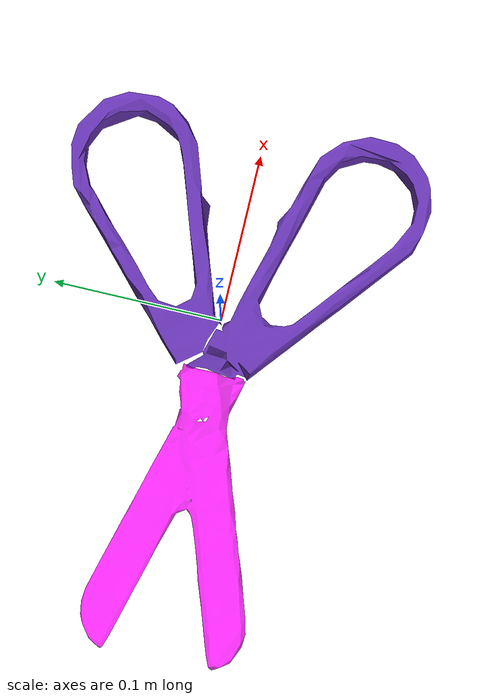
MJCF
<?xml version="1.0" encoding="utf-8"?>
<mujoco model="top_watertight_tiny">

  <asset>

    <mesh file="top_watertight_tiny.obj"/>

    <mesh file="top_watertight_tiny_collision_0.obj"/>

    <mesh file="top_watertight_tiny_collision_1.obj"/>

    <mesh file="top_watertight_tiny_collision_2.obj"/>

    <mesh file="top_watertight_tiny_collision_3.obj"/>

    <mesh file="top_watertight_tiny_collision_4.obj"/>

    <mesh file="top_watertight_tiny_collision_5.obj"/>

    <mesh file="top_watertight_tiny_collision_6.obj"/>

    <mesh file="top_watertight_tiny_collision_7.obj"/>

    <mesh file="top_watertight_tiny_collision_8.obj"/>

    <mesh file="top_watertight_tiny_collision_9.obj"/>

    <mesh file="top_watertight_tiny_collision_10.obj"/>

    <mesh file="top_watertight_tiny_collision_11.obj"/>

    <mesh file="top_watertight_tiny_collision_12.obj"/>

    <mesh file="top_watertight_tiny_collision_13.obj"/>

    <mesh file="top_watertight_tiny_collision_14.obj"/>

    <mesh file="top_watertight_tiny_collision_15.obj"/>

    <mesh file="top_watertight_tiny_collision_16.obj"/>

    <mesh file="top_watertight_tiny_collision_17.obj"/>

    <mesh file="top_watertight_tiny_collision_18.obj"/>

    <mesh file="top_watertight_tiny_collision_19.obj"/>

    <mesh file="top_watertight_tiny_collision_20.obj"/>

    <mesh file="top_watertight_tiny_collision_21.obj"/>

    <mesh file="top_watertight_tiny_collision_22.obj"/>

    <mesh file="top_watertight_tiny_collision_23.obj"/>

    <mesh file="top_watertight_tiny_collision_24.obj"/>

    <mesh file="top_watertight_tiny_collision_25.obj"/>

    <mesh file="top_watertight_tiny_collision_26.obj"/>

    <mesh file="top_watertight_tiny_collision_27.obj"/>

    <mesh file="top_watertight_tiny_collision_28.obj"/>

    <mesh file="top_watertight_tiny_collision_29.obj"/>

    <mesh file="top_watertight_tiny_collision_30.obj"/>

    <mesh file="top_watertight_tiny_collision_31.obj"/>

    <mesh file="top_watertight_tiny_collision_32.obj"/>

    <mesh file="top_watertight_tiny_collision_33.obj"/>

    <mesh file="top_watertight_tiny_collision_34.obj"/>

    <mesh file="bottom_watertight_tiny.obj"/>

    <mesh file="bottom_watertight_tiny_collision_0.obj"/>

    <mesh file="bottom_watertight_tiny_collision_1.obj"/>

    <mesh file="bottom_watertight_tiny_collision_2.obj"/>

    <mesh file="bottom_watertight_tiny_collision_3.obj"/>

    <mesh file="bottom_watertight_tiny_collision_4.obj"/>

    <mesh file="bottom_watertight_tiny_collision_5.obj"/>

    <mesh file="bottom_watertight_tiny_collision_6.obj"/>

    <mesh file="bottom_watertight_tiny_collision_7.obj"/>

    <mesh file="bottom_watertight_tiny_collision_8.obj"/>

    <mesh file="bottom_watertight_tiny_collision_9.obj"/>

    <mesh file="bottom_watertight_tiny_collision_10.obj"/>

    <mesh file="bottom_watertight_tiny_collision_11.obj"/>

    <mesh file="bottom_watertight_tiny_collision_12.obj"/>

    <mesh file="bottom_watertight_tiny_collision_13.obj"/>

    <mesh file="bottom_watertight_tiny_collision_14.obj"/>

  </asset>

  <worldbody>

    <body name="top_watertight_tiny">

      <freejoint/>

      <geom mesh="top_watertight_tiny" group="2" type="mesh" rgba="0.4 0.2 0.7 1" contype="0" conaffinity="0" solimp="0.90 0.95 0.001" solref="0.02 1.0" density="100" friction="0.95 0.4 0.3"/>

      <geom mesh="top_watertight_tiny_collision_0" rgba="0.4626614823373031 0.1838827324704353 0.3422918710329522 1" group="3" type="mesh" solimp="0.90 0.95 0.001" solref="0.02 1.0" density="100" friction="0.95 0.4 0.3"/>

      <geom mesh="top_watertight_tiny_collision_1" rgba="0.5445767869313037 0.6353428325800452 0.9513442831535136 1" group="3" type="mesh" solimp="0.90 0.95 0.001" solref="0.02 1.0" density="100" friction="0.95 0.4 0.3"/>

      <geom mesh="top_watertight_tiny_collision_2" rgba="0.6336134422852723 0.6255807963234515 0.6682565030784698 1" group="3" type="mesh" solimp="0.90 0.95 0.001" solref="0.02 1.0" density="100" friction="0.95 0.4 0.3"/>

      <geom mesh="top_watertight_tiny_collision_3" rgba="0.8666026543069485 0.4162442920525299 0.680003788764021 1" group="3" type="mesh" solimp="0.90 0.95 0.001" solref="0.02 1.0" density="100" friction="0.95 0.4 0.3"/>

      <geom mesh="top_watertight_tiny_collision_4" rgba="0.32906469533046756 0.0600455643497394 0.1363656576386172 1" group="3" type="mesh" solimp="0.90 0.95 0.001" solref="0.02 1.0" density="100" friction="0.95 0.4 0.3"/>

      <geom mesh="top_watertight_tiny_collision_5" rgba="0.3985313316887502 0.6567212318487765 0.01568228580671205 1" group="3" type="mesh" solimp="0.90 0.95 0.001" solref="0.02 1.0" density="100" friction="0.95 0.4 0.3"/>

      <geom mesh="top_watertight_tiny_collision_6" rgba="0.9726426098871301 0.14845858309718185 0.1244204411026597 1" group="3" type="mesh" solimp="0.90 0.95 0.001" solref="0.02 1.0" density="100" friction="0.95 0.4 0.3"/>

      <geom mesh="top_watertight_tiny_collision_7" rgba="0.6166946742347542 0.8127442586446252 0.6136302520286487 1" group="3" type="mesh" solimp="0.90 0.95 0.001" solref="0.02 1.0" density="100" friction="0.95 0.4 0.3"/>

      <geom mesh="top_watertight_tiny_collision_8" rgba="0.897796863519104 0.20624877186199198 0.053327943024294666 1" group="3" type="mesh" solimp="0.90 0.95 0.001" solref="0.02 1.0" density="100" friction="0.95 0.4 0.3"/>

      <geom mesh="top_watertight_tiny_collision_9" rgba="0.14520633074354317 0.31813141339146844 0.43464573818850316 1" group="3" type="mesh" solimp="0.90 0.95 0.001" solref="0.02 1.0" density="100" friction="0.95 0.4 0.3"/>

      <geom mesh="top_watertight_tiny_collision_10" rgba="0.28618801409937744 0.03231878023093737 0.5545849966216458 1" group="3" type="mesh" solimp="0.90 0.95 0.001" solref="0.02 1.0" density="100" friction="0.95 0.4 0.3"/>

      <geom mesh="top_watertight_tiny_collision_11" rgba="0.33667143897251905 0.19132592612504018 0.5420719966404363 1" group="3" type="mesh" solimp="0.90 0.95 0.001" solref="0.02 1.0" density="100" friction="0.95 0.4 0.3"/>

      <geom mesh="top_watertight_tiny_collision_12" rgba="0.6317309956890945 0.8794461866243029 0.6633222001959029 1" group="3" type="mesh" solimp="0.90 0.95 0.001" solref="0.02 1.0" density="100" friction="0.95 0.4 0.3"/>

      <geom mesh="top_watertight_tiny_collision_13" rgba="0.8852617952192834 0.1665021778246567 0.052483864682979386 1" group="3" type="mesh" solimp="0.90 0.95 0.001" solref="0.02 1.0" density="100" friction="0.95 0.4 0.3"/>

      <geom mesh="top_watertight_tiny_collision_14" rgba="0.9336684206637588 0.06660640191980272 0.5983973207848111 1" group="3" type="mesh" solimp="0.90 0.95 0.001" solref="0.02 1.0" density="100" friction="0.95 0.4 0.3"/>

      <geom mesh="top_watertight_tiny_collision_15" rgba="0.07739295950708724 0.3127878860044081 0.417180914166438 1" group="3" type="mesh" solimp="0.90 0.95 0.001" solref="0.02 1.0" density="100" friction="0.95 0.4 0.3"/>

      <geom mesh="top_watertight_tiny_collision_16" rgba="0.4497838643167441 0.5716504149774757 0.027655358773777672 1" group="3" type="mesh" solimp="0.90 0.95 0.001" solref="0.02 1.0" density="100" friction="0.95 0.4 0.3"/>

      <geom mesh="top_watertight_tiny_collision_17" rgba="0.08265158974860343 0.3754078849383119 0.23140959348509071 1" group="3" type="mesh" solimp="0.90 0.95 0.001" solref="0.02 1.0" density="100" friction="0.95 0.4 0.3"/>

      <geom mesh="top_watertight_tiny_collision_18" rgba="0.5110635373474605 0.023542700980439757 0.6798269046395641 1" group="3" type="mesh" solimp="0.90 0.95 0.001" solref="0.02 1.0" density="100" friction="0.95 0.4 0.3"/>

      <geom mesh="top_watertight_tiny_collision_19" rgba="0.242699044149689 0.4519657482481624 0.15087064427343944 1" group="3" type="mesh" solimp="0.90 0.95 0.001" solref="0.02 1.0" density="100" friction="0.95 0.4 0.3"/>

      <geom mesh="top_watertight_tiny_collision_20" rgba="0.14000537994548423 0.0077773560607465875 0.16156128134725267 1" group="3" type="mesh" solimp="0.90 0.95 0.001" solref="0.02 1.0" density="100" friction="0.95 0.4 0.3"/>

      <geom mesh="top_watertight_tiny_collision_21" rgba="0.28742143758663974 0.6462493317720278 0.6105842590507622 1" group="3" type="mesh" solimp="0.90 0.95 0.001" solref="0.02 1.0" density="100" friction="0.95 0.4 0.3"/>

      <geom mesh="top_watertight_tiny_collision_22" rgba="0.20436233576347418 0.5933003269387017 0.9530426634492802 1" group="3" type="mesh" solimp="0.90 0.95 0.001" solref="0.02 1.0" density="100" friction="0.95 0.4 0.3"/>

      <geom mesh="top_watertight_tiny_collision_23" rgba="0.04982906524167263 0.2687611653223865 0.1793404641356069 1" group="3" type="mesh" solimp="0.90 0.95 0.001" solref="0.02 1.0" density="100" friction="0.95 0.4 0.3"/>

      <geom mesh="top_watertight_tiny_collision_24" rgba="0.31981838340089663 0.278560140519742 0.3471224938805122 1" group="3" type="mesh" solimp="0.90 0.95 0.001" solref="0.02 1.0" density="100" friction="0.95 0.4 0.3"/>

      <geom mesh="top_watertight_tiny_collision_25" rgba="0.9893095309858724 0.7059760041327703 0.6828871267577575 1" group="3" type="mesh" solimp="0.90 0.95 0.001" solref="0.02 1.0" density="100" friction="0.95 0.4 0.3"/>

      <geom mesh="top_watertight_tiny_collision_26" rgba="0.6256993170482554 0.9816709489282667 0.2608909608607809 1" group="3" type="mesh" solimp="0.90 0.95 0.001" solref="0.02 1.0" density="100" friction="0.95 0.4 0.3"/>

      <geom mesh="top_watertight_tiny_collision_27" rgba="0.5440962077147867 0.7392832115273674 0.5709038614339648 1" group="3" type="mesh" solimp="0.90 0.95 0.001" solref="0.02 1.0" density="100" friction="0.95 0.4 0.3"/>

      <geom mesh="top_watertight_tiny_collision_28" rgba="0.3554853131499539 0.19645293277441844 0.6721844784846921 1" group="3" type="mesh" solimp="0.90 0.95 0.001" solref="0.02 1.0" density="100" friction="0.95 0.4 0.3"/>

      <geom mesh="top_watertight_tiny_collision_29" rgba="0.6458535810848641 0.2702009490993982 0.43801011727023853 1" group="3" type="mesh" solimp="0.90 0.95 0.001" solref="0.02 1.0" density="100" friction="0.95 0.4 0.3"/>

      <geom mesh="top_watertight_tiny_collision_30" rgba="0.14917060355090117 0.42500265975452534 0.6846671452191576 1" group="3" type="mesh" solimp="0.90 0.95 0.001" solref="0.02 1.0" density="100" friction="0.95 0.4 0.3"/>

      <geom mesh="top_watertight_tiny_collision_31" rgba="0.7735626498047639 0.33585241143505584 0.3471092688452001 1" group="3" type="mesh" solimp="0.90 0.95 0.001" solref="0.02 1.0" density="100" friction="0.95 0.4 0.3"/>

      <geom mesh="top_watertight_tiny_collision_32" rgba="0.05192112931223314 0.6913553836998152 0.6816882756199322 1" group="3" type="mesh" solimp="0.90 0.95 0.001" solref="0.02 1.0" density="100" friction="0.95 0.4 0.3"/>

      <geom mesh="top_watertight_tiny_collision_33" rgba="0.14829705854387876 0.9450658963532927 0.999130170472614 1" group="3" type="mesh" solimp="0.90 0.95 0.001" solref="0.02 1.0" density="100" friction="0.95 0.4 0.3"/>

      <geom mesh="top_watertight_tiny_collision_34" rgba="0.6483472666778693 0.8574056285944275 0.6694123652213013 1" group="3" type="mesh" solimp="0.90 0.95 0.001" solref="0.02 1.0" density="100" friction="0.95 0.4 0.3"/>

      <body name="bottom_watertight_tiny">

        <geom mesh="bottom_watertight_tiny" group="2" type="mesh" rgba="1 0 1 0.8" contype="0" conaffinity="0" solimp="0.90 0.95 0.001" solref="0.02 1.0" density="100" friction="0.95 0.4 0.3"/>

        <geom mesh="bottom_watertight_tiny_collision_0" rgba="0.5272290096863181 0.49594848526288005 0.9428245246786853 1" group="3" type="mesh" solimp="0.90 0.95 0.001" solref="0.02 1.0" density="100" friction="0.95 0.4 0.3"/>

        <geom mesh="bottom_watertight_tiny_collision_1" rgba="0.30865744844416676 0.8914641683494989 0.914047764849407 1" group="3" type="mesh" solimp="0.90 0.95 0.001" solref="0.02 1.0" density="100" friction="0.95 0.4 0.3"/>

        <geom mesh="bottom_watertight_tiny_collision_2" rgba="0.14732138102712922 0.6474224101818601 0.13386764938532236 1" group="3" type="mesh" solimp="0.90 0.95 0.001" solref="0.02 1.0" density="100" friction="0.95 0.4 0.3"/>

        <geom mesh="bottom_watertight_tiny_collision_3" rgba="0.6592470733483282 0.16629687952200067 0.5690621131834793 1" group="3" type="mesh" solimp="0.90 0.95 0.001" solref="0.02 1.0" density="100" friction="0.95 0.4 0.3"/>

        <geom mesh="bottom_watertight_tiny_collision_4" rgba="0.14480078446289557 0.8995111724770833 0.9431585223219869 1" group="3" type="mesh" solimp="0.90 0.95 0.001" solref="0.02 1.0" density="100" friction="0.95 0.4 0.3"/>

        <geom mesh="bottom_watertight_tiny_collision_5" rgba="0.5878952822229575 0.3557181963138979 0.1259542522784528 1" group="3" type="mesh" solimp="0.90 0.95 0.001" solref="0.02 1.0" density="100" friction="0.95 0.4 0.3"/>

        <geom mesh="bottom_watertight_tiny_collision_6" rgba="0.8498374278851542 0.2661548872660595 0.7546920221979878 1" group="3" type="mesh" solimp="0.90 0.95 0.001" solref="0.02 1.0" density="100" friction="0.95 0.4 0.3"/>

        <geom mesh="bottom_watertight_tiny_collision_7" rgba="0.8979028825431346 0.17918422115483412 0.5641609217662489 1" group="3" type="mesh" solimp="0.90 0.95 0.001" solref="0.02 1.0" density="100" friction="0.95 0.4 0.3"/>

        <geom mesh="bottom_watertight_tiny_collision_8" rgba="0.44153167081844424 0.087619962802711 0.5402610693645598 1" group="3" type="mesh" solimp="0.90 0.95 0.001" solref="0.02 1.0" density="100" friction="0.95 0.4 0.3"/>

        <geom mesh="bottom_watertight_tiny_collision_9" rgba="0.20291328224725513 0.2112314162490182 0.6948945373852735 1" group="3" type="mesh" solimp="0.90 0.95 0.001" solref="0.02 1.0" density="100" friction="0.95 0.4 0.3"/>

        <geom mesh="bottom_watertight_tiny_collision_10" rgba="0.5823920338291118 0.13200057629655715 0.059853627927714426 1" group="3" type="mesh" solimp="0.90 0.95 0.001" solref="0.02 1.0" density="100" friction="0.95 0.4 0.3"/>

        <geom mesh="bottom_watertight_tiny_collision_11" rgba="0.019924991814070148 0.13531161643418876 0.2788826443085729 1" group="3" type="mesh" solimp="0.90 0.95 0.001" solref="0.02 1.0" density="100" friction="0.95 0.4 0.3"/>

        <geom mesh="bottom_watertight_tiny_collision_12" rgba="0.2989854446943605 0.5854789035181921 0.3566891030124736 1" group="3" type="mesh" solimp="0.90 0.95 0.001" solref="0.02 1.0" density="100" friction="0.95 0.4 0.3"/>

        <geom mesh="bottom_watertight_tiny_collision_13" rgba="0.3167935985341417 0.5483624229889902 0.032487994833020784 1" group="3" type="mesh" solimp="0.90 0.95 0.001" solref="0.02 1.0" density="100" friction="0.95 0.4 0.3"/>

        <geom mesh="bottom_watertight_tiny_collision_14" rgba="0.05602429076213589 0.3546970716252119 0.7455089636771887 1" group="3" type="mesh" solimp="0.90 0.95 0.001" solref="0.02 1.0" density="100" friction="0.95 0.4 0.3"/>

        <site name="bottom_watertight_tiny_touch_site" pos="0 0 0" size="0.2" rgba="1 0 0 0." type="sphere"/>
      </body>

      <site name="top_watertight_tiny_touch_site" pos="0 0 0" size="0.2" rgba="1 0 0 0." type="sphere"/>
    </body>

  </worldbody>

  <sensor>
    <touch name="top_watertight_tiny_touch" site="top_watertight_tiny_touch_site"/>
    <touch name="bottom_watertight_tiny_touch" site="bottom_watertight_tiny_touch_site"/>
  </sensor>
</mujoco>
